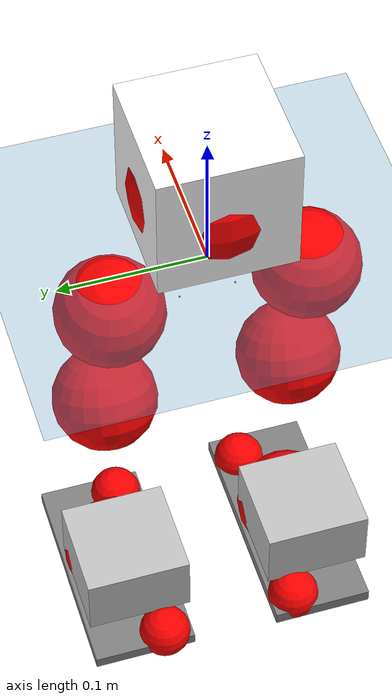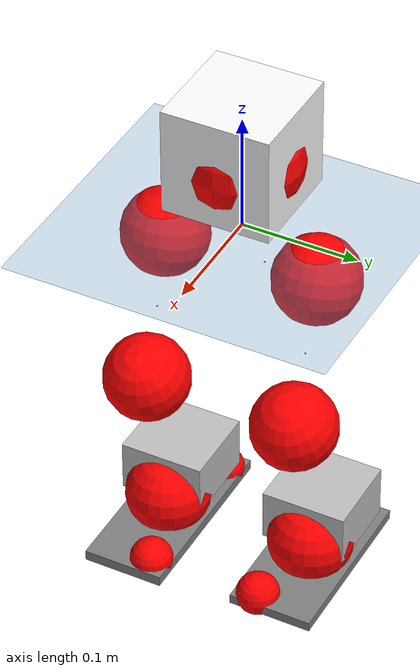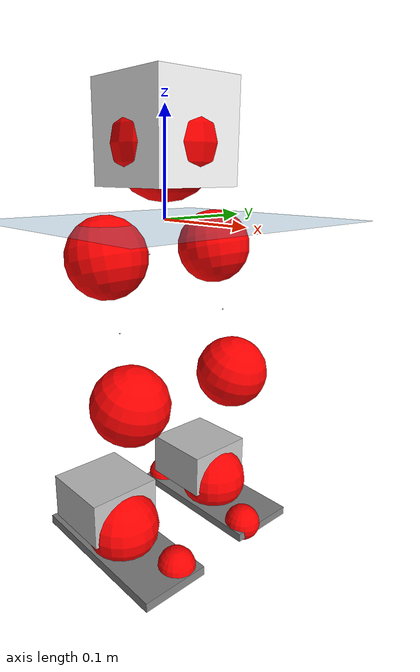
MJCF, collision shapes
<mujoco model="pi_12dof_release_v1">
  <compiler angle="radian" assetdir="assets" balanceinertia="true" inertiafromgeom="false"/>

  <option timestep="0.005" density="1.2" viscosity="2e-05"/>

  <size nkey="1"/>

  <visual>
    <quality shadowsize="8192"/>
    <map shadowclip="0.5"/>
  </visual>

  <default>
    <default class="/">
      <joint armature="0.01" damping="0.01" frictionloss="0.01"/>
      <geom contype="0" conaffinity="0" group="1" solref="-1000 -80"/>
      <site size="0.01 0.005 0.005" group="5"/>
      <general forcelimited="true" biastype="affine" gainprm="20" biasprm="0 -20 -0.5"/>
      <default class="foot">
        <geom size="0.0845 0.036 0.005" type="box" condim="6" group="4" priority="1" friction="0.9 0.2 0.2" solimp="0.015 1 0.005"/>
      </default>
      <default class="reward_collision_sphere">
        <geom group="5" rgba="1 0 0 1"/>
      </default>
    </default>
  </default>

  <asset>
    <texture type="skybox" colorspace="auto" name="//unnamed_texture_0" builtin="gradient" rgb1="0.95 0.95 0.95" rgb2="0.95 0.95 0.95" width="100" height="600"/>
    <texture type="2d" colorspace="auto" name="texplane" builtin="checker" rgb1="0.345 0.575 0.748" rgb2="0.345 0.575 0.748" markrgb="1 1 1" width="512" height="512"/>
    <material name="MatPlane" class="/" texture="texplane" texuniform="true" texrepeat="2 2" specular="0.9"/>
    <mesh name="baselink_1" class="/" file="baselink_1.STL"/>
    <mesh name="r_hip_pitch_link" class="/" file="r_hip_pitch_link.STL"/>
    <mesh name="r_hip_roll_link" class="/" file="r_hip_roll_link.STL"/>
    <mesh name="r_thigh_link" class="/" file="r_thigh_link.STL"/>
    <mesh name="r_calf_link" class="/" file="r_calf_link.STL"/>
    <mesh name="r_ankle_pitch_link" class="/" file="r_ankle_pitch_link.STL"/>
    <mesh name="r_ankle_roll_link" class="/" file="r_ankle_roll_link.STL"/>
    <mesh name="l_hip_pitch_link" class="/" file="l_hip_pitch_link.STL"/>
    <mesh name="l_hip_roll_link" class="/" file="l_hip_roll_link.STL"/>
    <mesh name="l_thigh_link" class="/" file="l_thigh_link.STL"/>
    <mesh name="l_calf_link" class="/" file="l_calf_link.STL"/>
    <mesh name="l_ankle_pitch_link" class="/" file="l_ankle_pitch_link.STL"/>
    <mesh name="l_ankle_roll_link" class="/" file="l_ankle_roll_link.STL"/>
  </asset>

  <worldbody>
    <geom name="floor" class="/" size="100 100 0.125" type="plane" group="0" material="MatPlane"/>
    <light name="toplight_shadow" class="/" pos="0 0 5" dir="0.0990148 0.0990148 -0.990148" type="directional" ambient="0.04 0.04 0.04" diffuse="0.55 0.55 0.55" specular="0.12 0.12 0.12"/>
    <light name="toplight_fill" class="/" pos="0 0 5" dir="0.0990148 0.0990148 -0.990148" type="directional" castshadow="false" ambient="0.04 0.04 0.04" diffuse="0.3 0.3 0.3" specular="0.08 0.08 0.08"/>
    <body name="trunk" pos="0.000448363 5.77177e-05 4.27509e-05" quat="1 0.000242271 -8.20615e-05 7.76066e-05">
      <inertial pos="0.00168465 -0.00215189 0.0370457" quat="0.695477 0.0112762 0.0135277 0.718333" mass="1.68309" diaginertia="0.00797489 0.00447238 0.00313701"/>
      <joint name="//unnamed_joint_0" type="free"/>
      <geom name="//unnamed_geom_1" class="/" type="mesh" density="0" rgba="1 1 1 1" mesh="baselink_1"/>
      <geom name="//unnamed_geom_2" class="/" size="0.0461568 0.0461568 0.0461568" pos="0 0 0.0754729" type="box" rgba="1 1 1 1"/>
      <geom name="//unnamed_geom_3" class="reward_collision_sphere" size="0.0507724" pos="0 0 0.0660388"/>
      <site name="imu" class="/" pos="-0.00975065 -0.00246996 0.0059071" size="0.00923135"/>
      <camera name="track" class="/" pos="0 -1.73306 0" quat="0.707107 0.707107 0 0" mode="trackcom"/>
      <camera name="ego_camera" class="/" pos="0.0719599 0 0.169814" quat="-0.5 -0.5 0.5 0.5"/>
      <body name="r_hip_pitch_link" pos="-0.000397682 -0.0191024 -0.0308098" quat="0.992178 0.000114717 -0.124829 -8.92884e-05">
        <inertial pos="0.00236595 -0.0478186 7.49463e-05" quat="-0.0195351 0.706335 -0.0255571 0.707147" mass="0.28656" diaginertia="8.67269e-05 4.81129e-05 6.15864e-05"/>
        <joint name="r_hip_pitch_joint" class="/" pos="0 0 0" axis="-0.00521482 -0.999984 -0.00224853" stiffness="0.00561234" range="-1.74722 1.21801" armature="0.00962765" damping="0.000506699" frictionloss="0.00963959"/>
        <geom name="//unnamed_geom_4" class="/" type="mesh" density="0" rgba="0.75294 0.75294 0.75294 1" mesh="r_hip_pitch_link"/>
        <geom name="//unnamed_geom_5" class="/" size="0.000461568 0.000461568 0.000461568" type="box" rgba="0.75294 0.75294 0.75294 1"/>
        <body name="r_hip_roll_link" pos="0.00157208 -0.0488778 0.0013252" quat="1 2.38981e-05 -3.76644e-06 1.1101e-05">
          <inertial pos="-0.0021719 -0.000154552 -0.0568816" quat="0.704271 -0.0805284 -0.0831614 0.70043" mass="0.304551" diaginertia="0.000267638 0.00013613 9.59134e-05"/>
          <joint name="r_hip_roll_joint" class="/" pos="0 0 0" axis="-0.999957 0.00771423 -0.00523021" range="-0.146346 0.480294" armature="0.00973126" damping="0.00661778" frictionloss="0.00932649"/>
          <geom name="//unnamed_geom_6" class="/" type="mesh" density="0" rgba="0.75294 0.75294 0.75294 1" mesh="r_hip_roll_link"/>
          <geom name="//unnamed_geom_7" class="/" size="0.000461568 0.000461568 0.000461568" type="box" rgba="0.75294 0.75294 0.75294 1"/>
          <geom name="//unnamed_geom_8" class="reward_collision_sphere" size="0.0369254"/>
          <body name="r_thigh_link" pos="0.000127395 8.83909e-05 -0.0667407" quat="1 -0.000203959 -4.45415e-05 0.00035655">
            <inertial pos="0.000279394 0.000712872 -0.044482" quat="0.736047 0.67693 -0.000713615 -0.000369319" mass="0.0896758" diaginertia="0.000102462 4.61417e-05 4.37409e-05"/>
            <joint name="r_thigh_joint" class="/" pos="0 0 0" axis="0.000836405 -0.000850018 -0.999999" range="-0.319856 0.5821" armature="0.00915016" damping="0.00314113" frictionloss="0.00940093"/>
            <geom name="//unnamed_geom_9" class="/" type="mesh" density="0" rgba="0.75294 0.75294 0.75294 1" mesh="r_thigh_link"/>
            <geom name="//unnamed_geom_10" class="/" size="0.000461568 0.000461568 0.000461568" type="box" rgba="0.75294 0.75294 0.75294 1"/>
            <body name="r_calf_link" pos="-0.000467759 -0.00185911 -0.0653292" quat="0.947643 -9.91465e-06 0.319332 1.07092e-05">
              <inertial pos="0.000693472 -0.000694818 -0.0658514" quat="0.999982 -0.00287016 0.00122354 0.0050548" mass="0.639263" diaginertia="0.00288271 0.00168584 0.000129587"/>
              <joint name="r_calf_joint" class="/" pos="0 0 0" axis="-0.000878714 -0.999995 0.00317762" stiffness="0.000354493" range="-1.6595 0.632763" armature="0.00932075" damping="0.00660641" frictionloss="0.00965502"/>
              <geom name="//unnamed_geom_11" class="/" type="mesh" density="0" rgba="0.75294 0.75294 0.75294 1" mesh="r_calf_link"/>
              <geom name="//unnamed_geom_12" class="/" size="0.000461568 0.000461568 0.000461568" type="box" rgba="0.75294 0.75294 0.75294 1"/>
              <geom name="//unnamed_geom_13" class="reward_collision_sphere" size="0.0369254"/>
              <body name="r_ankle_pitch_link" pos="0.00071434 0.00275577 -0.131675" quat="0.980069 1.71872e-05 -0.198659 5.05291e-06">
                <inertial pos="0.00468929 0.00348986 -0.000799614" quat="0.00250115 0.704347 0.00122205 0.70985" mass="0.134953" diaginertia="0.000250413 0.00010732 8.80207e-05"/>
                <joint name="r_ankle_pitch_joint" class="/" pos="0 0 0" axis="0.00460354 -0.999989 0.00081544" range="-1.29037 0.502504" armature="0.00916713" damping="0" frictionloss="0.00920914"/>
                <geom name="//unnamed_geom_14" class="/" type="mesh" density="0" rgba="0.75294 0.75294 0.75294 1" mesh="r_ankle_pitch_link"/>
                <geom name="//unnamed_geom_15" class="/" size="0.0360023 0.0369254 0.0230784" type="box" rgba="0.75294 0.75294 0.75294 1"/>
                <body name="r_ankle_roll_link" pos="0.0746289 0.00182598 -0.000460662" quat="1 -4.62139e-06 3.05178e-06 -9.08459e-06">
                  <inertial pos="-0.0232717 0.000368011 -0.0123177" quat="0.560556 0.427997 0.433965 0.560598" mass="0.40666" diaginertia="0.000900526 0.000500917 0.000212301"/>
                  <joint name="r_ankle_roll_joint" class="/" pos="0 0 0" axis="-0.999997 0.00178305 0.00155897" range="-0.148749 0.13043" armature="0.00869973" damping="0" frictionloss="0.00970217"/>
                  <geom name="//unnamed_geom_16" class="/" type="mesh" density="0" rgba="0.75294 0.75294 0.75294 1" mesh="r_ankle_roll_link"/>
                  <geom name="//unnamed_geom_17" class="/" type="mesh" rgba="0.75294 0.75294 0.75294 1" mesh="r_ankle_roll_link"/>
                  <geom name="right_foot" class="foot" size="0.0824375 0.0350705 0.0046543" pos="-0.0489327 0 -0.0415101"/>
                  <geom name="//unnamed_geom_19" class="reward_collision_sphere" size="0.0369254" pos="-0.0479733 0 -0.0188682"/>
                  <geom name="//unnamed_geom_20" class="reward_collision_sphere" size="0.0184627" pos="0.014392 0.0173306 -0.0377364"/>
                  <geom name="//unnamed_geom_21" class="reward_collision_sphere" size="0.0184627" pos="-0.115136 0.0173306 -0.0377364"/>
                  <site name="right_foot" class="foot" pos="-0.0489327 0 -0.0415101" size="0.00923135"/>
                </body>
              </body>
            </body>
          </body>
        </body>
      </body>
      <body name="l_hip_pitch_link" pos="-0.0015859 0.0189843 -0.0308705" quat="0.992181 -4.83568e-06 -0.124804 0.000111375">
        <inertial pos="-0.000153324 0.0477668 -0.000289234" quat="-0.0382323 0.705527 0.0270815 0.707132" mass="0.304002" diaginertia="0.000104247 5.18855e-05 7.3276e-05"/>
        <joint name="l_hip_pitch_joint" class="/" pos="0 0 0" axis="0.00158345 0.999998 0.000803626" stiffness="0.0023436" range="-1.27177 1.7527" armature="0.0100241" damping="0.00146211" frictionloss="0.00912642"/>
        <geom name="//unnamed_geom_22" class="/" type="mesh" density="0" rgba="0.75294 0.75294 0.75294 1" mesh="l_hip_pitch_link"/>
        <geom name="//unnamed_geom_23" class="/" size="0.000461568 0.000461568 0.000461568" type="box" rgba="0.75294 0.75294 0.75294 1"/>
        <body name="l_hip_roll_link" pos="0.00101375 0.0464428 -0.000122855" quat="1 9.489e-05 2.11307e-05 8.075e-05">
          <inertial pos="-0.00120343 0.000559311 -0.0579312" quat="0.699979 -0.0738922 -0.0787706 0.70595" mass="0.305673" diaginertia="0.000270626 0.00013638 9.51249e-05"/>
          <joint name="l_hip_roll_joint" class="/" pos="0 0 0" axis="-0.999943 0.00259586 0.0103134" stiffness="0.000506638" range="-0.462419 0.107316" armature="0.00939304" damping="0.0108238" frictionloss="0.00868619"/>
          <geom name="//unnamed_geom_24" class="/" type="mesh" density="0" rgba="0.75294 0.75294 0.75294 1" mesh="l_hip_roll_link"/>
          <geom name="//unnamed_geom_25" class="/" size="0.000461568 0.000461568 0.000461568" type="box" rgba="0.75294 0.75294 0.75294 1"/>
          <geom name="//unnamed_geom_26" class="reward_collision_sphere" size="0.0369254"/>
          <body name="l_thigh_link" pos="0.000648189 -0.00104932 -0.0652819" quat="1 0.000159416 0.000355104 -0.000315001">
            <inertial pos="0.000499747 -0.00128882 -0.0453795" quat="0.673006 0.739565 0.0068216 0.00772333" mass="0.0887911" diaginertia="0.000102092 4.66495e-05 4.22967e-05"/>
            <joint name="l_thigh_joint" class="/" pos="0 0 0" axis="-0.00394831 -0.0042032 -0.999983" range="-0.590912 0.286143" armature="0.0087939" damping="0" frictionloss="0.00904823"/>
            <geom name="//unnamed_geom_27" class="/" type="mesh" density="0" rgba="0.75294 0.75294 0.75294 1" mesh="l_thigh_link"/>
            <geom name="//unnamed_geom_28" class="/" size="0.000461568 0.000461568 0.000461568" type="box" rgba="0.75294 0.75294 0.75294 1"/>
            <body name="l_calf_link" pos="-0.000581023 -0.00097681 -0.0663338" quat="0.947608 7.09548e-05 0.319436 -0.000261988">
              <inertial pos="-0.00124235 0.00302206 -0.0655451" quat="0.999995 0.00152494 -9.69759e-05 0.00271898" mass="0.646822" diaginertia="0.00289981 0.00172901 0.000128959"/>
              <joint name="l_calf_joint" class="/" pos="0 0 0" axis="0.000153195 0.999996 0.00295181" stiffness="0.00175399" range="-0.668154 1.6095" armature="0.00873827" damping="0.0061973" frictionloss="0.00866084"/>
              <geom name="//unnamed_geom_29" class="/" type="mesh" density="0" rgba="0.75294 0.75294 0.75294 1" mesh="l_calf_link"/>
              <geom name="//unnamed_geom_30" class="/" size="0.000461568 0.000461568 0.000461568" type="box" rgba="0.75294 0.75294 0.75294 1"/>
              <geom name="//unnamed_geom_31" class="reward_collision_sphere" size="0.0369254"/>
              <body name="l_ankle_pitch_link" pos="0.00150341 0.00207546 -0.130688" quat="0.980069 -4.16728e-05 -0.198659 -3.86902e-05">
                <inertial pos="0.00487599 -0.00040321 0.000279785" quat="-0.00218339 0.707293 0.00193279 0.706915" mass="0.131717" diaginertia="0.000240662 0.000105234 8.71119e-05"/>
                <joint name="l_ankle_pitch_joint" class="/" pos="0 0 0" axis="0.000459606 0.999999 -0.00141775" stiffness="0.000309522" range="-0.500724 1.29761" armature="0.00925047" damping="0.000497425" frictionloss="0.0102407"/>
                <geom name="//unnamed_geom_32" class="/" type="mesh" density="0" rgba="0.75294 0.75294 0.75294 1" mesh="l_ankle_pitch_link"/>
                <geom name="//unnamed_geom_33" class="/" size="0.0360023 0.0369254 0.0230784" type="box" rgba="0.75294 0.75294 0.75294 1"/>
                <body name="l_ankle_roll_link" pos="0.071061 0.00151965 -0.000422527" quat="1 -0.000259276 -0.000208102 -0.000329447">
                  <inertial pos="-0.0224764 -0.000328792 -0.0138432" quat="0.562357 0.431076 0.435134 0.555505" mass="0.412582" diaginertia="0.000932391 0.000511002 0.000212181"/>
                  <joint name="l_ankle_roll_joint" class="/" pos="0 0 0" axis="-0.999997 -0.00187186 0.00142104" range="-0.152239 0.154184" armature="0.00959064" damping="0.00963256" frictionloss="0.00841685"/>
                  <geom name="//unnamed_geom_34" class="/" type="mesh" density="0" rgba="0.75294 0.75294 0.75294 1" mesh="l_ankle_roll_link"/>
                  <geom name="//unnamed_geom_35" class="/" type="mesh" rgba="0.75294 0.75294 0.75294 1" mesh="l_ankle_roll_link"/>
                  <geom name="left_foot" class="foot" size="0.0768727 0.0364451 0.0042859" pos="-0.0489327 0 -0.0415101"/>
                  <geom name="//unnamed_geom_37" class="reward_collision_sphere" size="0.0369254" pos="-0.0479733 0 -0.0188682"/>
                  <geom name="//unnamed_geom_38" class="reward_collision_sphere" size="0.0184627" pos="0.014392 -0.0173306 -0.0377364"/>
                  <geom name="//unnamed_geom_39" class="reward_collision_sphere" size="0.0184627" pos="-0.115136 -0.0173306 -0.0377364"/>
                  <site name="left_foot" class="foot" pos="-0.0489327 0 -0.0415101" size="0.00923135"/>
                </body>
              </body>
            </body>
          </body>
        </body>
      </body>
    </body>
  </worldbody>

  <contact>
    <pair class="/" geom1="floor" geom2="right_foot" name="//unnamed_contact_1"/>
    <pair class="/" geom1="floor" geom2="left_foot" name="//unnamed_contact_0"/>
  </contact>

  <actuator>
    <general name="r_hip_pitch_joint" class="/" joint="r_hip_pitch_joint" forcerange="-18.7422 18.7422" gainprm="18.3359" biasprm="0 -18.3359 -0.481002"/>
    <general name="r_hip_roll_joint" class="/" joint="r_hip_roll_joint" forcerange="-18.797 18.797" gainprm="18.3359" biasprm="0 -18.3359 -0.481002"/>
    <general name="r_thigh_joint" class="/" joint="r_thigh_joint" forcerange="-19.6724 19.6724" gainprm="18.3359" biasprm="0 -18.3359 -0.481002"/>
    <general name="r_calf_joint" class="/" joint="r_calf_joint" forcerange="-19.621 19.621" gainprm="18.3359" biasprm="0 -18.3359 -0.481002"/>
    <general name="r_ankle_pitch_joint" class="/" joint="r_ankle_pitch_joint" forcerange="-18.7986 18.7986" gainprm="18.3359" biasprm="0 -18.3359 -0.481002"/>
    <general name="r_ankle_roll_joint" class="/" joint="r_ankle_roll_joint" forcerange="-19.4627 19.4627" gainprm="18.3359" biasprm="0 -18.3359 -0.481002"/>
    <general name="l_hip_pitch_joint" class="/" joint="l_hip_pitch_joint" forcerange="-19.0965 19.0965" gainprm="18.3359" biasprm="0 -18.3359 -0.481002"/>
    <general name="l_hip_roll_joint" class="/" joint="l_hip_roll_joint" forcerange="-19.8969 19.8969" gainprm="18.3359" biasprm="0 -18.3359 -0.481002"/>
    <general name="l_thigh_joint" class="/" joint="l_thigh_joint" forcerange="-19.6112 19.6112" gainprm="18.3359" biasprm="0 -18.3359 -0.481002"/>
    <general name="l_calf_joint" class="/" joint="l_calf_joint" forcerange="-19.7116 19.7116" gainprm="18.3359" biasprm="0 -18.3359 -0.481002"/>
    <general name="l_ankle_pitch_joint" class="/" joint="l_ankle_pitch_joint" forcerange="-18.6588 18.6588" gainprm="18.3359" biasprm="0 -18.3359 -0.481002"/>
    <general name="l_ankle_roll_joint" class="/" joint="l_ankle_roll_joint" forcerange="-18.5609 18.5609" gainprm="18.3359" biasprm="0 -18.3359 -0.481002"/>
  </actuator>

  <sensor>
    <gyro site="imu" name="imu_angular_velocity"/>
    <velocimeter site="imu" name="imu_linear_velocity"/>
    <framelinvel objtype="site" objname="left_foot" name="left_foot_global_linear_velocity"/>
    <framelinvel objtype="site" objname="right_foot" name="right_foot_global_linear_velocity"/>
  </sensor>

  <keyframe>
    <key name="home" qpos="0 0 0.291 1 0 0 0 0.4 0 0 -0.8 0.4 0 -0.4 0 0 0.8 -0.4 0"/>
  </keyframe>
</mujoco>
